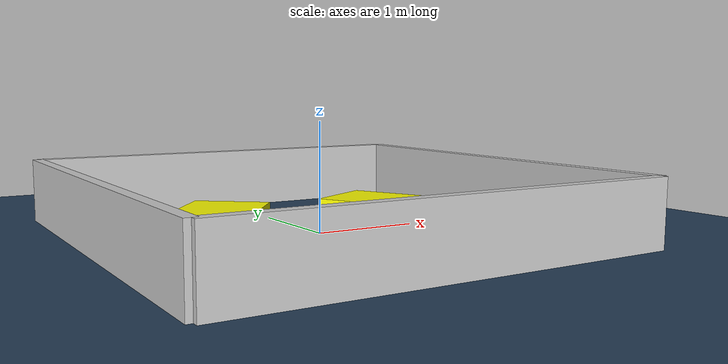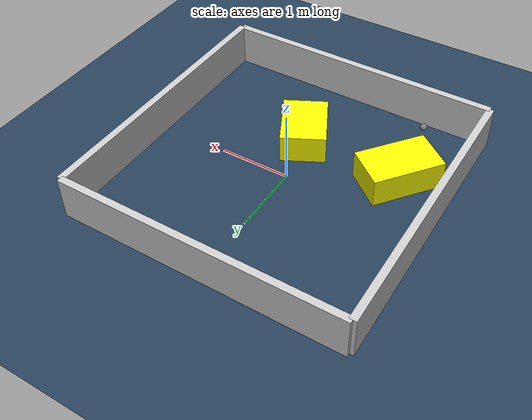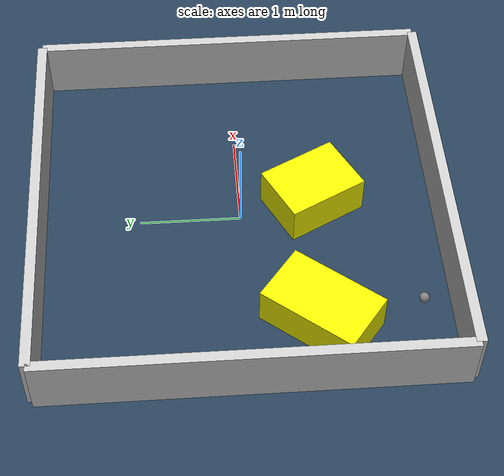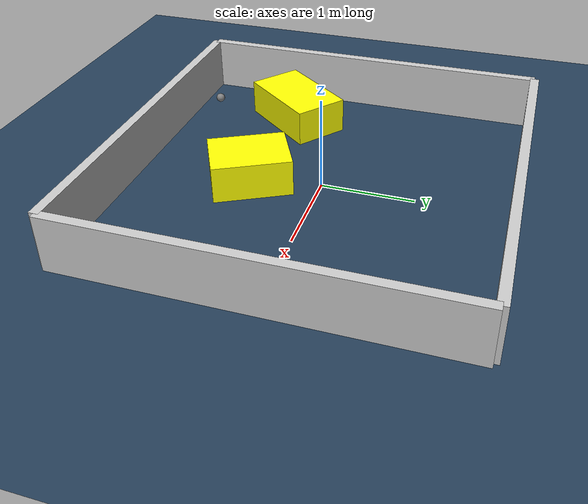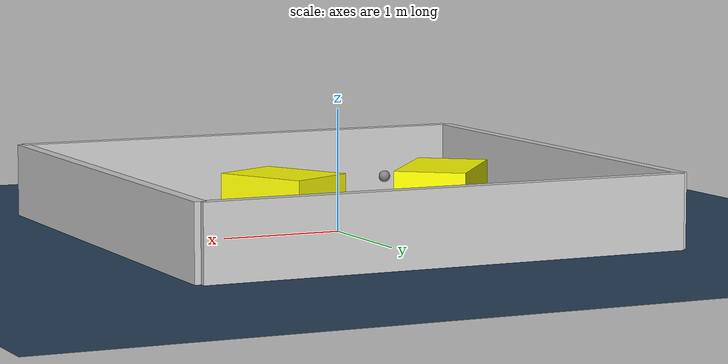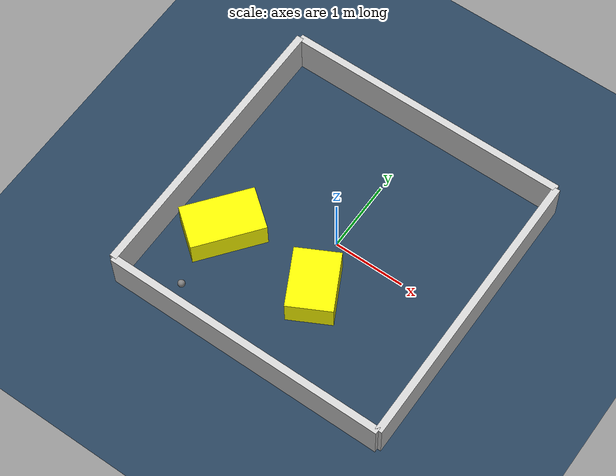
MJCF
<?xml version="1.0" ?>
<mujoco model="generated_environment">
  <option timestep="0.01" integrator="RK4" cone="elliptic"/>
  <default>
    <geom density="1"/>
  </default>
  <asset>
    <texture builtin="gradient" height="3072" rgb1="0.3 0.5 0.7" rgb2="0 0 0" type="skybox" width="512"/>
    <texture builtin="checker" height="300" mark="edge" markrgb="0.8 0.8 0.8" name="groundplane" rgb1="0.2 0.3 0.4" rgb2="0.1 0.2 0.3" type="2d" width="300"/>
    <material name="groundplane" reflectance="0.2" texrepeat="5 5" texture="groundplane" texuniform="true"/>
    <material name="robot" rgba="0.0 1.0 0.0 1"/>
  </asset>
  <worldbody>
    <light dir="0 0 -1" directional="true" pos="0 0 1.5"/>
    <geom condim="4" friction="1.0 0.005 0.001" material="groundplane" name="floor" size="0 0 0.05" type="plane"/>
    <body name="walls">
      <geom name="wall_1" condim="4" pos="-2.0 0.0 0.3" rgba="0.800000011920929 0.800000011920929 0.800000011920929 1.0" size="0.05 2.0 0.3" type="box"/>
      <geom name="wall_2" condim="4" pos="2.0 0.0 0.3" rgba="0.800000011920929 0.800000011920929 0.800000011920929 1.0" size="0.05 2.0 0.3" type="box"/>
      <geom name="wall_3" condim="4" pos="0.0 -2.0 0.3" rgba="0.800000011920929 0.800000011920929 0.800000011920929 1.0" size="2.0 0.05 0.3" type="box"/>
      <geom name="wall_4" condim="4" pos="0.0 2.0 0.3" rgba="0.800000011920929 0.800000011920929 0.800000011920929 1.0" size="2.0 0.05 0.3" type="box"/>
    </body>
    <body name="robot">
      <joint name="joint_x" type="slide" pos="0 0 0" axis="1 0 0"/>
      <joint name="joint_y" type="slide" pos="0 0 0" axis="0 1 0"/>
      <geom name="robot" type="sphere" pos="-1.225871396089715 -1.6613636575805506 0.2" size="0.05" mass="5." friction="1.0 0.005 0.0001" condim="4"/>
      <site name="sensor_ball"/>
    </body>
    <body name="obstacle_1_movable">
      <geom name="obstacle_1_movable" condim="4" pos="0.15752988757918196 -0.7365104370751929 0.2" euler="0 0 207.35509139158378" friction="1.0 0.005 0.001" rgba="1 1 0 1" size="0.311331484569638 0.41509684872906694 0.2" type="box" mass="0.1"/>
      <joint type="free"/>
    </body>
    <body name="obstacle_2_movable">
      <geom name="obstacle_2_movable" condim="4" pos="-1.2933422166252875 -0.6876190898743216 0.2" euler="0 0 141.80211502964985" friction="1.0 0.005 0.001" rgba="1 1 0 1" size="0.30570149218939524 0.5054048194825405 0.2" type="box" mass="0.1"/>
      <joint type="free"/>
    </body>
  </worldbody>
  <actuator>
    <motor name="actuator_x" joint="joint_x" gear="1" ctrlrange="-1 1"/>
    <motor name="actuator_y" joint="joint_y" gear="1" ctrlrange="-1 1"/>
  </actuator>
</mujoco>
